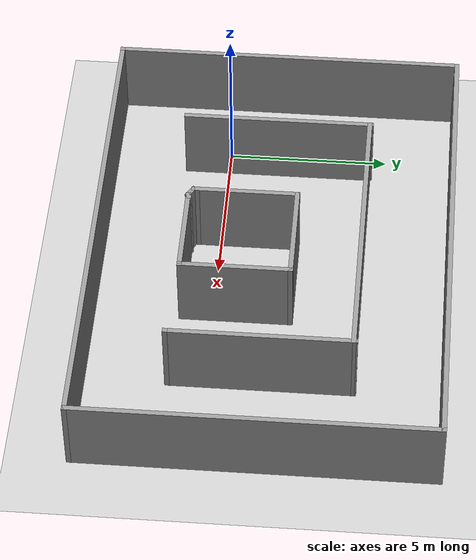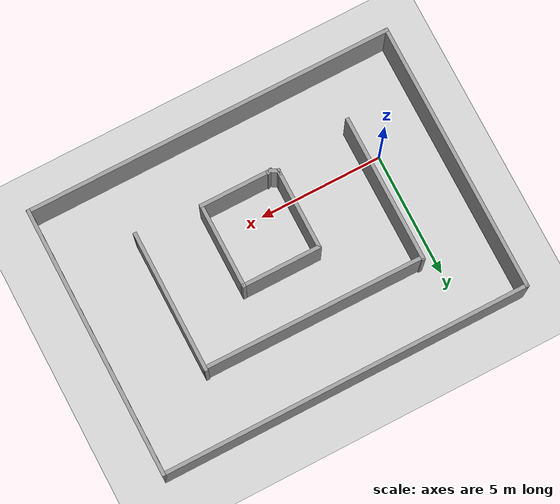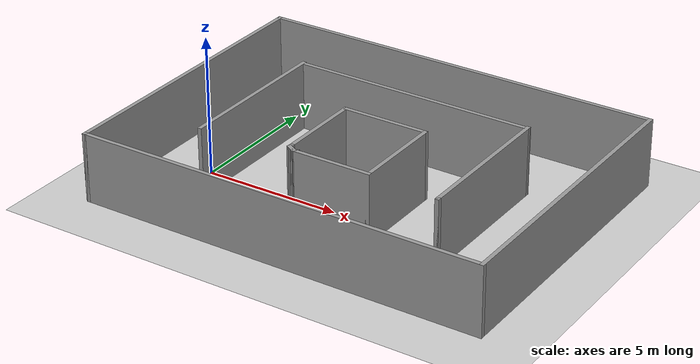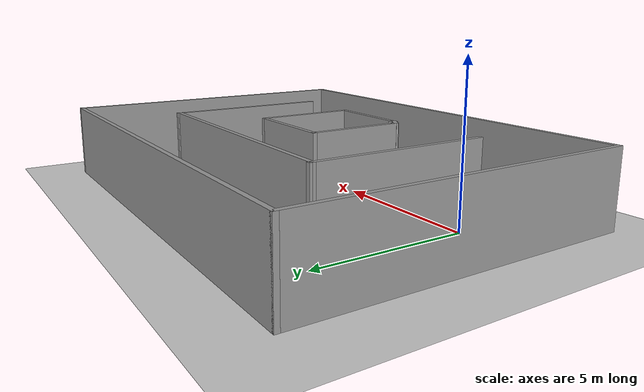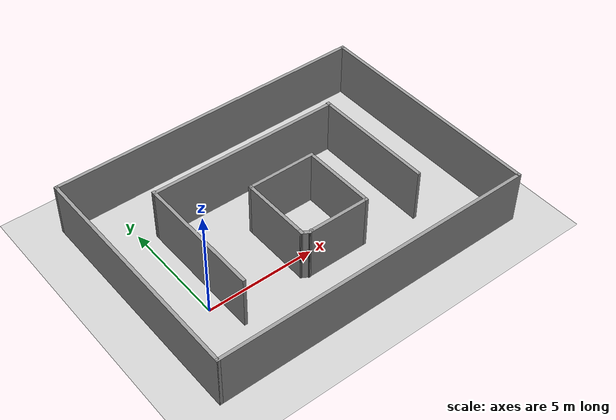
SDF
<sdf version="1.7">
 <world name="default">
  <light name="sun" type="directional">
   <pose>0 0 10 0 -0 0</pose>
   <diffuse>0.8 0.8 0.8 1</diffuse>
   <specular>0.2 0.2 0.2 1</specular>
   <attenuation>
    <range>1000</range>
    <constant>0.9</constant>
    <linear>0.01</linear>
    <quadratic>0.001</quadratic>
   </attenuation>
   <direction>-0.5 0.1 -0.9</direction>
   <spot><inner_angle>0</inner_angle><outer_angle>0</outer_angle><falloff>0</falloff></spot>
  </light>
  <model name="ground_plane">
   <static>1</static>
   <link name="link">
    <collision name="collision">
     <geometry><plane><normal>0 0 1</normal><size>100 100</size></plane></geometry>
     <surface>
      <contact><collide_bitmask>65535</collide_bitmask></contact>
      <friction><ode><mu>100</mu><mu2>50</mu2></ode></friction>
     </surface>
    </collision>
    <visual name="visual">
     <cast_shadows>0</cast_shadows>
     <geometry><plane><normal>0 0 1</normal><size>100 100</size></plane></geometry>
     <material>
      <script><uri>file://media/materials/scripts/gazebo.material</uri><name>Gazebo/Grey</name></script>
     </material>
    </visual>
   </link>
  </model>
  <gravity>0 0 -9.8</gravity>
  <magnetic_field>6e-06 2.3e-05 -4.2e-05</magnetic_field>
  <atmosphere type="adiabatic"/>
  <physics type="ode">
   <max_step_size>0.001</max_step_size>
   <real_time_factor>1</real_time_factor>
   <real_time_update_rate>1000</real_time_update_rate>
  </physics>
  <scene><ambient>0.4 0.4 0.4 1</ambient><background>0.7 0.7 0.7 1</background><shadows>1</shadows></scene>
  <spherical_coordinates>
   <surface_model>EARTH_WGS84</surface_model>
   <latitude_deg>0</latitude_deg>
   <longitude_deg>0</longitude_deg>
   <elevation>0</elevation>
   <heading_deg>0</heading_deg>
  </spherical_coordinates>
  <model name="kb_2">
   <pose>5.24267 1.7084 0 0 -0 0</pose>
   <link name="Wall_0">
    <collision name="Wall_0_Collision">
     <geometry><box><size>11 0.15 2.5</size></box></geometry>
     <pose>0 0 1.25 0 -0 0</pose>
    </collision>
    <visual name="Wall_0_Visual">
     <pose>0 0 1.25 0 -0 0</pose>
     <geometry><box><size>11 0.15 2.5</size></box></geometry>
     <material>
      <script><uri>file://media/materials/scripts/gazebo.material</uri><name>Gazebo/Grey</name></script>
      <ambient>1 1 1 1</ambient>
     </material>
     <meta><layer>0</layer></meta>
    </visual>
    <pose>-7.425 -0 0 0 -0 -1.5708</pose>
   </link>
   <link name="Wall_1">
    <collision name="Wall_1_Collision">
     <geometry><box><size>0.15 0.15 2.5</size></box></geometry>
     <pose>0 0 1.25 0 -0 0</pose>
    </collision>
    <visual name="Wall_1_Visual">
     <pose>0 0 1.25 0 -0 0</pose>
     <geometry><box><size>0.15 0.15 2.5</size></box></geometry>
     <material>
      <script><uri>file://media/materials/scripts/gazebo.material</uri><name>Gazebo/Grey</name></script>
      <ambient>1 1 1 1</ambient>
     </material>
     <meta><layer>0</layer></meta>
    </visual>
    <pose>-7.425 -5.425 0 0 -0 0</pose>
   </link>
   <link name="Wall_10">
    <collision name="Wall_10_Collision">
     <geometry><box><size>0.15 0.15 2.5</size></box></geometry>
     <pose>0 0 1.25 0 -0 0</pose>
    </collision>
    <visual name="Wall_10_Visual">
     <pose>0 0 1.25 0 -0 0</pose>
     <geometry><box><size>0.15 0.15 2.5</size></box></geometry>
     <material>
      <script><uri>file://media/materials/scripts/gazebo.material</uri><name>Gazebo/Grey</name></script>
      <ambient>1 1 1 1</ambient>
     </material>
     <meta><layer>0</layer></meta>
    </visual>
    <pose>4.34471 -2.85216 0 0 -0 0</pose>
   </link>
   <link name="Wall_12">
    <collision name="Wall_12_Collision">
     <geometry><box><size>3 0.15 2.5</size></box></geometry>
     <pose>0 0 1.25 0 -0 0</pose>
    </collision>
    <visual name="Wall_12_Visual">
     <pose>0 0 1.25 0 -0 0</pose>
     <geometry><box><size>3 0.15 2.5</size></box></geometry>
     <material>
      <script><uri>file://media/materials/scripts/gazebo.material</uri><name>Gazebo/Grey</name></script>
      <ambient>1 1 1 1</ambient>
     </material>
     <meta><layer>0</layer></meta>
    </visual>
    <pose>0.288932 -2.68364 0 0 -0 0</pose>
   </link>
   <link name="Wall_13">
    <collision name="Wall_13_Collision">
     <geometry><box><size>3.5 0.15 2.5</size></box></geometry>
     <pose>0 0 1.25 0 -0 0</pose>
    </collision>
    <visual name="Wall_13_Visual">
     <pose>0 0 1.25 0 -0 0</pose>
     <geometry><box><size>3.5 0.15 2.5</size></box></geometry>
     <material>
      <script><uri>file://media/materials/scripts/gazebo.material</uri><name>Gazebo/Grey</name></script>
      <ambient>1 1 1 1</ambient>
     </material>
     <meta><layer>0</layer></meta>
    </visual>
    <pose>1.71393 -1.00864 0 0 -0 1.5708</pose>
   </link>
   <link name="Wall_14">
    <collision name="Wall_14_Collision">
     <geometry><box><size>3.25 0.15 2.5</size></box></geometry>
     <pose>0 0 1.25 0 -0 0</pose>
    </collision>
    <visual name="Wall_14_Visual">
     <pose>0 0 1.25 0 -0 0</pose>
     <geometry><box><size>3.25 0.15 2.5</size></box></geometry>
     <material>
      <script><uri>file://media/materials/scripts/gazebo.material</uri><name>Gazebo/Grey</name></script>
      <ambient>1 1 1 1</ambient>
     </material>
     <meta><layer>0</layer></meta>
    </visual>
    <pose>0.163932 0.666363 0 0 -0 3.14159</pose>
   </link>
   <link name="Wall_15">
    <collision name="Wall_15_Collision">
     <geometry><box><size>3.25 0.15 2.5</size></box></geometry>
     <pose>0 0 1.25 0 -0 0</pose>
    </collision>
    <visual name="Wall_15_Visual">
     <pose>0 0 1.25 0 -0 0</pose>
     <geometry><box><size>3.25 0.15 2.5</size></box></geometry>
     <material>
      <script><uri>file://media/materials/scripts/gazebo.material</uri><name>Gazebo/Grey</name></script>
      <ambient>1 1 1 1</ambient>
     </material>
     <meta><layer>0</layer></meta>
    </visual>
    <pose>-1.38607 -0.883637 0 0 -0 -1.5708</pose>
   </link>
   <link name="Wall_16">
    <collision name="Wall_16_Collision">
     <geometry><box><size>0.25 0.15 2.5</size></box></geometry>
     <pose>0 0 1.25 0 -0 0</pose>
    </collision>
    <visual name="Wall_16_Visual">
     <pose>0 0 1.25 0 -0 0</pose>
     <geometry><box><size>0.25 0.15 2.5</size></box></geometry>
     <material>
      <script><uri>file://media/materials/scripts/gazebo.material</uri><name>Gazebo/Grey</name></script>
      <ambient>1 1 1 1</ambient>
     </material>
     <meta><layer>0</layer></meta>
    </visual>
    <pose>-1.38607 -2.48364 0 0 -0 -1.5708</pose>
   </link>
   <link name="Wall_17">
    <collision name="Wall_17_Collision">
     <geometry><box><size>0.441548 0.15 2.5</size></box></geometry>
     <pose>0 0 1.25 0 -0 0</pose>
    </collision>
    <visual name="Wall_17_Visual">
     <pose>0 0 1.25 0 -0 0</pose>
     <geometry><box><size>0.441548 0.15 2.5</size></box></geometry>
     <material>
      <script><uri>file://media/materials/scripts/gazebo.material</uri><name>Gazebo/Grey</name></script>
      <ambient>1 1 1 1</ambient>
     </material>
     <meta><layer>0</layer></meta>
    </visual>
    <pose>-1.26107 -2.60864 0 0 -0 -0.54042</pose>
   </link>
   <link name="Wall_18">
    <collision name="Wall_18_Collision">
     <geometry><box><size>0.25 0.15 2.5</size></box></geometry>
     <pose>0 0 1.25 0 -0 0</pose>
    </collision>
    <visual name="Wall_18_Visual">
     <pose>0 0 1.25 0 -0 0</pose>
     <geometry><box><size>0.25 0.15 2.5</size></box></geometry>
     <material>
      <script><uri>file://media/materials/scripts/gazebo.material</uri><name>Gazebo/Grey</name></script>
      <ambient>1 1 1 1</ambient>
     </material>
     <meta><layer>0</layer></meta>
    </visual>
    <pose>-1.08777 -2.6707 0 0 -0 0.261799</pose>
   </link>
   <link name="Wall_3">
    <collision name="Wall_3_Collision">
     <geometry><box><size>15 0.15 2.5</size></box></geometry>
     <pose>0 0 1.25 0 -0 0</pose>
    </collision>
    <visual name="Wall_3_Visual">
     <pose>0 0 1.25 0 -0 0</pose>
     <geometry><box><size>15 0.15 2.5</size></box></geometry>
     <material>
      <script><uri>file://media/materials/scripts/gazebo.material</uri><name>Gazebo/Grey</name></script>
      <ambient>1 1 1 1</ambient>
     </material>
     <meta><layer>0</layer></meta>
    </visual>
    <pose>0 5.425 0 0 -0 0</pose>
   </link>
   <link name="Wall_4">
    <collision name="Wall_4_Collision">
     <geometry><box><size>11 0.15 2.5</size></box></geometry>
     <pose>0 0 1.25 0 -0 0</pose>
    </collision>
    <visual name="Wall_4_Visual">
     <pose>0 0 1.25 0 -0 0</pose>
     <geometry><box><size>11 0.15 2.5</size></box></geometry>
     <material>
      <script><uri>file://media/materials/scripts/gazebo.material</uri><name>Gazebo/Grey</name></script>
      <ambient>1 1 1 1</ambient>
     </material>
     <meta><layer>0</layer></meta>
    </visual>
    <pose>7.425 -0 0 0 -0 -1.5708</pose>
   </link>
   <link name="Wall_5">
    <collision name="Wall_5_Collision">
     <geometry><box><size>15 0.15 2.5</size></box></geometry>
     <pose>0 0 1.25 0 -0 0</pose>
    </collision>
    <visual name="Wall_5_Visual">
     <pose>0 0 1.25 0 -0 0</pose>
     <geometry><box><size>15 0.15 2.5</size></box></geometry>
     <material>
      <script><uri>file://media/materials/scripts/gazebo.material</uri><name>Gazebo/Grey</name></script>
      <ambient>1 1 1 1</ambient>
     </material>
     <meta><layer>0</layer></meta>
    </visual>
    <pose>0 -5.425 0 0 -0 3.14159</pose>
   </link>
   <link name="Wall_7">
    <collision name="Wall_7_Collision">
     <geometry><box><size>6 0.15 2.5</size></box></geometry>
     <pose>0 0 1.25 0 -0 0</pose>
    </collision>
    <visual name="Wall_7_Visual">
     <pose>0 0 1.25 0 -0 0</pose>
     <geometry><box><size>6 0.15 2.5</size></box></geometry>
     <material>
      <script><uri>file://media/materials/scripts/gazebo.material</uri><name>Gazebo/Grey</name></script>
      <ambient>1 1 1 1</ambient>
     </material>
     <meta><layer>0</layer></meta>
    </visual>
    <pose>-4.55182 -0.130635 0 0 -0 1.5708</pose>
   </link>
   <link name="Wall_8">
    <collision name="Wall_8_Collision">
     <geometry><box><size>9.04701 0.15 2.5</size></box></geometry>
     <pose>0 0 1.25 0 -0 0</pose>
    </collision>
    <visual name="Wall_8_Visual">
     <pose>0 0 1.25 0 -0 0</pose>
     <geometry><box><size>9.04701 0.15 2.5</size></box></geometry>
     <material>
      <script><uri>file://media/materials/scripts/gazebo.material</uri><name>Gazebo/Grey</name></script>
      <ambient>1 1 1 1</ambient>
     </material>
     <meta><layer>0</layer></meta>
    </visual>
    <pose>-0.103555 2.72458 0 0 -0 -0.005229</pose>
   </link>
   <link name="Wall_9">
    <collision name="Wall_9_Collision">
     <geometry><box><size>5.75 0.15 2.5</size></box></geometry>
     <pose>0 0 1.25 0 -0 0</pose>
    </collision>
    <visual name="Wall_9_Visual">
     <pose>0 0 1.25 0 -0 0</pose>
     <geometry><box><size>5.75 0.15 2.5</size></box></geometry>
     <material>
      <script><uri>file://media/materials/scripts/gazebo.material</uri><name>Gazebo/Grey</name></script>
      <ambient>1 1 1 1</ambient>
     </material>
     <meta><layer>0</layer></meta>
    </visual>
    <pose>4.34471 -0.052159 0 0 -0 -1.5708</pose>
   </link>
   <static>1</static>
  </model>
 </world>
</sdf>
